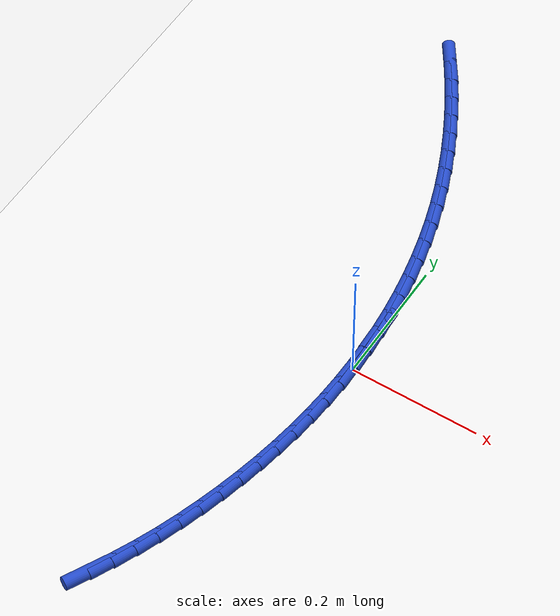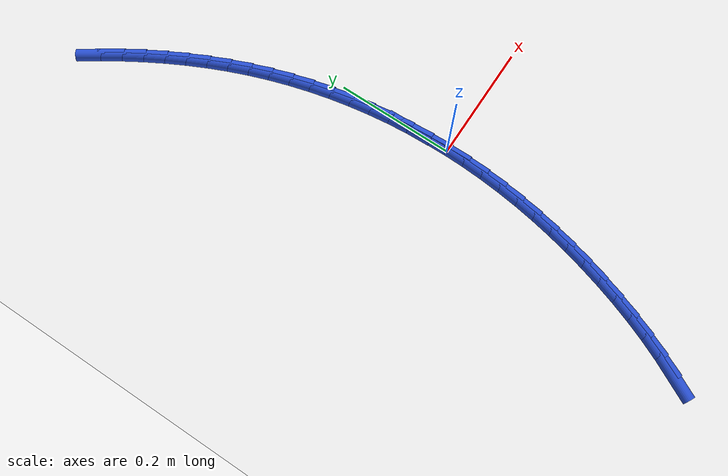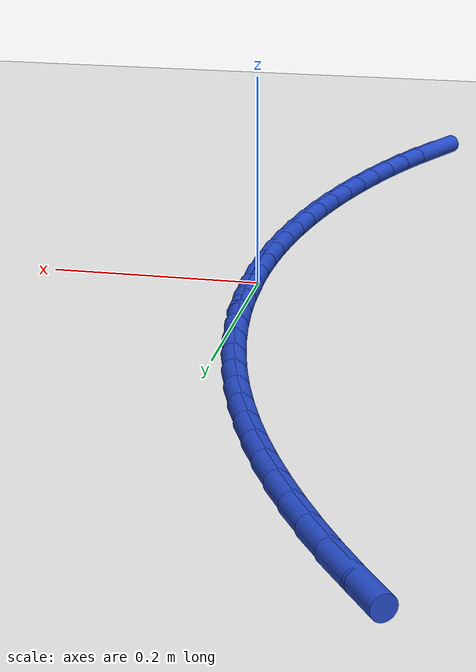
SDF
<sdf version="1.6">
 <world name="default">
  <model name="ground_plane">
   <static>1</static>
   <link name="link">
    <collision name="collision">
     <geometry><plane><normal>0 0 1</normal><size>100 100</size></plane></geometry>
     <surface><friction><ode><mu>100</mu><mu2>50</mu2></ode></friction></surface>
    </collision>
    <visual name="visual">
     <cast_shadows>0</cast_shadows>
     <geometry><plane><normal>0 0 1</normal><size>100 100</size></plane></geometry>
     <material>
      <script><uri>file://media/materials/scripts/gazebo.material</uri><name>Gazebo/WhiteGlow</name></script>
     </material>
    </visual>
   </link>
  </model>
  <model name="line">
   <link name="link_0">
    <pose>-5.204170427930421e-18 -6.245004513516506e-17 0.01 0 1.57 -1.5561447790093017</pose>
    <collision name="collision">
     <geometry><cylinder><radius>0.01</radius><length>0.08</length></cylinder></geometry>
    </collision>
    <visual name="visual">
     <material>
      <script><name>Gazebo/Blue</name><uri>file://media/materials/scripts/gazebo.material</uri></script>
     </material>
     <geometry><cylinder><radius>0.01</radius><length>0.08</length></cylinder></geometry>
    </visual>
   </link>
   <link name="link_1">
    <pose>-0.0005162711267056635 0.03523410573817638 0.01 0 1.57 -1.5201662241441394</pose>
    <collision name="collision">
     <geometry><cylinder><radius>0.01</radius><length>0.08</length></cylinder></geometry>
    </collision>
    <visual name="visual">
     <material>
      <script><name>Gazebo/Blue</name><uri>file://media/materials/scripts/gazebo.material</uri></script>
     </material>
     <geometry><cylinder><radius>0.01</radius><length>0.08</length></cylinder></geometry>
    </visual>
   </link>
   <link name="link_2">
    <pose>-0.0023020913173392257 0.07047586722419166 0.01 0 1.57 -1.484297227940387</pose>
    <collision name="collision">
     <geometry><cylinder><radius>0.01</radius><length>0.08</length></cylinder></geometry>
    </collision>
    <visual name="visual">
     <material>
      <script><name>Gazebo/Blue</name><uri>file://media/materials/scripts/gazebo.material</uri></script>
     </material>
     <geometry><cylinder><radius>0.01</radius><length>0.08</length></cylinder></geometry>
    </visual>
   </link>
   <link name="link_3">
    <pose>-0.005352982997565068 0.10565864834959819 0.01 0 1.57 -1.4484263781673588</pose>
    <collision name="collision">
     <geometry><cylinder><radius>0.01</radius><length>0.08</length></cylinder></geometry>
    </collision>
    <visual name="visual">
     <material>
      <script><name>Gazebo/Blue</name><uri>file://media/materials/scripts/gazebo.material</uri></script>
     </material>
     <geometry><cylinder><radius>0.01</radius><length>0.08</length></cylinder></geometry>
    </visual>
   </link>
   <link name="link_4">
    <pose>-0.009664468593047574 0.14071581300594832 0.01 0 1.57 -1.4124426665159606</pose>
    <collision name="collision">
     <geometry><cylinder><radius>0.01</radius><length>0.08</length></cylinder></geometry>
    </collision>
    <visual name="visual">
     <material>
      <script><name>Gazebo/Blue</name><uri>file://media/materials/scripts/gazebo.material</uri></script>
     </material>
     <geometry><cylinder><radius>0.01</radius><length>0.08</length></cylinder></geometry>
    </visual>
   </link>
   <link name="link_5">
    <pose>-0.015232070529451134 0.17558072508479447 0.01 0 1.57 -1.3762354643773935</pose>
    <collision name="collision">
     <geometry><cylinder><radius>0.01</radius><length>0.08</length></cylinder></geometry>
    </collision>
    <visual name="visual">
     <material>
      <script><name>Gazebo/Blue</name><uri>file://media/materials/scripts/gazebo.material</uri></script>
     </material>
     <geometry><cylinder><radius>0.01</radius><length>0.08</length></cylinder></geometry>
    </visual>
   </link>
   <link name="link_6">
    <pose>-0.022051311232440127 0.21018674847768903 0.01 0 1.57 -1.3396945418003954</pose>
    <collision name="collision">
     <geometry><cylinder><radius>0.01</radius><length>0.08</length></cylinder></geometry>
    </collision>
    <visual name="visual">
     <material>
      <script><name>Gazebo/Blue</name><uri>file://media/materials/scripts/gazebo.material</uri></script>
     </material>
     <geometry><cylinder><radius>0.01</radius><length>0.08</length></cylinder></geometry>
    </visual>
   </link>
   <link name="link_7">
    <pose>-0.030117713127678938 0.24446724707618445 0.01 0 1.57 -1.3027101657882285</pose>
    <collision name="collision">
     <geometry><cylinder><radius>0.01</radius><length>0.08</length></cylinder></geometry>
    </collision>
    <visual name="visual">
     <material>
      <script><name>Gazebo/Blue</name><uri>file://media/materials/scripts/gazebo.material</uri></script>
     </material>
     <geometry><cylinder><radius>0.01</radius><length>0.08</length></cylinder></geometry>
    </visual>
   </link>
   <link name="link_8">
    <pose>-0.03942679864083194 0.2783555847718331 0.01 0 1.57 -1.2652072793712814</pose>
    <collision name="collision">
     <geometry><cylinder><radius>0.01</radius><length>0.08</length></cylinder></geometry>
    </collision>
    <visual name="visual">
     <material>
      <script><name>Gazebo/Blue</name><uri>file://media/materials/scripts/gazebo.material</uri></script>
     </material>
     <geometry><cylinder><radius>0.01</radius><length>0.08</length></cylinder></geometry>
    </visual>
   </link>
   <link name="link_9">
    <pose>-0.04997340024318076 0.31178689562437656 0.01 0 1.57 -1.2278604827539903</pose>
    <collision name="collision">
     <geometry><cylinder><radius>0.01</radius><length>0.08</length></cylinder></geometry>
    </collision>
    <visual name="visual">
     <material>
      <script><name>Gazebo/Blue</name><uri>file://media/materials/scripts/gazebo.material</uri></script>
     </material>
     <geometry><cylinder><radius>0.01</radius><length>0.08</length></cylinder></geometry>
    </visual>
   </link>
   <link name="link_10">
    <pose>-0.061737290473816424 0.34473495191886827 0.01 0 1.57 -1.1914613746429972</pose>
    <collision name="collision">
     <geometry><cylinder><radius>0.01</radius><length>0.08</length></cylinder></geometry>
    </collision>
    <visual name="visual">
     <material>
      <script><name>Gazebo/Blue</name><uri>file://media/materials/scripts/gazebo.material</uri></script>
     </material>
     <geometry><cylinder><radius>0.01</radius><length>0.08</length></cylinder></geometry>
    </visual>
   </link>
   <link name="link_11">
    <pose>-0.07468361813707979 0.3772110450441017 0.01 0 1.57 -1.1561365020602024</pose>
    <collision name="collision">
     <geometry><cylinder><radius>0.01</radius><length>0.08</length></cylinder></geometry>
    </collision>
    <visual name="visual">
     <material>
      <script><name>Gazebo/Blue</name><uri>file://media/materials/scripts/gazebo.material</uri></script>
     </material>
     <geometry><cylinder><radius>0.01</radius><length>0.08</length></cylinder></geometry>
    </visual>
   </link>
   <link name="link_12">
    <pose>-0.088776929346043 0.40922801267212894 0.01 0 1.57 -1.1219664509776546</pose>
    <collision name="collision">
     <geometry><cylinder><radius>0.01</radius><length>0.08</length></cylinder></geometry>
    </collision>
    <visual name="visual">
     <material>
      <script><name>Gazebo/Blue</name><uri>file://media/materials/scripts/gazebo.material</uri></script>
     </material>
     <geometry><cylinder><radius>0.01</radius><length>0.08</length></cylinder></geometry>
    </visual>
   </link>
   <link name="link_13">
    <pose>-0.10398177021377833 0.4407986924750029 0.01 0 1.57 -1.0890156814608125</pose>
    <collision name="collision">
     <geometry><cylinder><radius>0.01</radius><length>0.08</length></cylinder></geometry>
    </collision>
    <visual name="visual">
     <material>
      <script><name>Gazebo/Blue</name><uri>file://media/materials/scripts/gazebo.material</uri></script>
     </material>
     <geometry><cylinder><radius>0.01</radius><length>0.08</length></cylinder></geometry>
    </visual>
   </link>
   <link name="link_14">
    <pose>-0.12026268685335802 0.47193592212477603 0.01 0 1.57 -1.0573331796554482</pose>
    <collision name="collision">
     <geometry><cylinder><radius>0.01</radius><length>0.08</length></cylinder></geometry>
    </collision>
    <visual name="visual">
     <material>
      <script><name>Gazebo/Blue</name><uri>file://media/materials/scripts/gazebo.material</uri></script>
     </material>
     <geometry><cylinder><radius>0.01</radius><length>0.08</length></cylinder></geometry>
    </visual>
   </link>
   <link name="link_15">
    <pose>-0.1375842253778542 0.5026525392935007 0.01 0 1.57 -1.0269534876532893</pose>
    <collision name="collision">
     <geometry><cylinder><radius>0.01</radius><length>0.08</length></cylinder></geometry>
    </collision>
    <visual name="visual">
     <material>
      <script><name>Gazebo/Blue</name><uri>file://media/materials/scripts/gazebo.material</uri></script>
     </material>
     <geometry><cylinder><radius>0.01</radius><length>0.08</length></cylinder></geometry>
    </visual>
   </link>
   <link name="link_16">
    <pose>-0.1559109319003392 0.5329613816532298 0.01 0 1.57 -0.9978980035696883</pose>
    <collision name="collision">
     <geometry><cylinder><radius>0.01</radius><length>0.08</length></cylinder></geometry>
    </collision>
    <visual name="visual">
     <material>
      <script><name>Gazebo/Blue</name><uri>file://media/materials/scripts/gazebo.material</uri></script>
     </material>
     <geometry><cylinder><radius>0.01</radius><length>0.08</length></cylinder></geometry>
    </visual>
   </link>
   <link name="link_17">
    <pose>-0.17520735253388506 0.5628752868760153 0.01 0 1.57 -0.9701764500124382</pose>
    <collision name="collision">
     <geometry><cylinder><radius>0.01</radius><length>0.08</length></cylinder></geometry>
    </collision>
    <visual name="visual">
     <material>
      <script><name>Gazebo/Blue</name><uri>file://media/materials/scripts/gazebo.material</uri></script>
     </material>
     <geometry><cylinder><radius>0.01</radius><length>0.08</length></cylinder></geometry>
    </visual>
   </link>
   <link name="link_196">
    <pose>-0.11755489331836111 -0.47583452861278686 0.01 0 1.57 1.0974962883103165</pose>
    <collision name="collision">
     <geometry><cylinder><radius>0.01</radius><length>0.08</length></cylinder></geometry>
    </collision>
    <visual name="visual">
     <material>
      <script><name>Gazebo/Blue</name><uri>file://media/materials/scripts/gazebo.material</uri></script>
     </material>
     <geometry><cylinder><radius>0.01</radius><length>0.08</length></cylinder></geometry>
    </visual>
   </link>
   <link name="link_197">
    <pose>-0.10146897178193827 -0.44442434655271323 0.01 0 1.57 1.1407491033429764</pose>
    <collision name="collision">
     <geometry><cylinder><radius>0.01</radius><length>0.08</length></cylinder></geometry>
    </collision>
    <visual name="visual">
     <material>
      <script><name>Gazebo/Blue</name><uri>file://media/materials/scripts/gazebo.material</uri></script>
     </material>
     <geometry><cylinder><radius>0.01</radius><length>0.08</length></cylinder></geometry>
    </visual>
   </link>
   <link name="link_198">
    <pose>-0.0866959490314756 -0.4122165299011821 0.01 0 1.57 1.1807261077444546</pose>
    <collision name="collision">
     <geometry><cylinder><radius>0.01</radius><length>0.08</length></cylinder></geometry>
    </collision>
    <visual name="visual">
     <material>
      <script><name>Gazebo/Blue</name><uri>file://media/materials/scripts/gazebo.material</uri></script>
     </material>
     <geometry><cylinder><radius>0.01</radius><length>0.08</length></cylinder></geometry>
    </visual>
   </link>
   <link name="link_199">
    <pose>-0.07318118144436547 -0.3793448410305729 0.01 0 1.57 1.2176680752501032</pose>
    <collision name="collision">
     <geometry><cylinder><radius>0.01</radius><length>0.08</length></cylinder></geometry>
    </collision>
    <visual name="visual">
     <material>
      <script><name>Gazebo/Blue</name><uri>file://media/materials/scripts/gazebo.material</uri></script>
     </material>
     <geometry><cylinder><radius>0.01</radius><length>0.08</length></cylinder></geometry>
    </visual>
   </link>
   <link name="link_200">
    <pose>-0.060870025398000197 -0.34594304231326506 0.01 0 1.57 1.2518139880083279</pose>
    <collision name="collision">
     <geometry><cylinder><radius>0.01</radius><length>0.08</length></cylinder></geometry>
    </collision>
    <visual name="visual">
     <material>
      <script><name>Gazebo/Blue</name><uri>file://media/materials/scripts/gazebo.material</uri></script>
     </material>
     <geometry><cylinder><radius>0.01</radius><length>0.08</length></cylinder></geometry>
    </visual>
   </link>
   <link name="link_201">
    <pose>-0.04970783726977214 -0.3121448961216381 0.01 0 1.57 1.283454417410372</pose>
    <collision name="collision">
     <geometry><cylinder><radius>0.01</radius><length>0.08</length></cylinder></geometry>
    </collision>
    <visual name="visual">
     <material>
      <script><name>Gazebo/Blue</name><uri>file://media/materials/scripts/gazebo.material</uri></script>
     </material>
     <geometry><cylinder><radius>0.01</radius><length>0.08</length></cylinder></geometry>
    </visual>
   </link>
   <link name="link_202">
    <pose>-0.039641512530660374 -0.2780818371048799 0.01 0 1.57 1.3142299116600538</pose>
    <collision name="collision">
     <geometry><cylinder><radius>0.01</radius><length>0.08</length></cylinder></geometry>
    </collision>
    <visual name="visual">
     <material>
      <script><name>Gazebo/Blue</name><uri>file://media/materials/scripts/gazebo.material</uri></script>
     </material>
     <geometry><cylinder><radius>0.01</radius><length>0.08</length></cylinder></geometry>
    </visual>
   </link>
   <link name="link_203">
    <pose>-0.030655291304774655 -0.2438288199061076 0.01 0 1.57 1.3456828014199609</pose>
    <collision name="collision">
     <geometry><cylinder><radius>0.01</radius><length>0.08</length></cylinder></geometry>
    </collision>
    <visual name="visual">
     <material>
      <script><name>Gazebo/Blue</name><uri>file://media/materials/scripts/gazebo.material</uri></script>
     </material>
     <geometry><cylinder><radius>0.01</radius><length>0.08</length></cylinder></geometry>
    </visual>
   </link>
   <link name="link_204">
    <pose>-0.022771872287404807 -0.20940263447411492 0.01 0 1.57 1.3778777923406833</pose>
    <collision name="collision">
     <geometry><cylinder><radius>0.01</radius><length>0.08</length></cylinder></geometry>
    </collision>
    <visual name="visual">
     <material>
      <script><name>Gazebo/Blue</name><uri>file://media/materials/scripts/gazebo.material</uri></script>
     </material>
     <geometry><cylinder><radius>0.01</radius><length>0.08</length></cylinder></geometry>
    </visual>
   </link>
   <link name="link_205">
    <pose>-0.01601571611137191 -0.17481740600560652 0.01 0 1.57 1.4108047338130483</pose>
    <collision name="collision">
     <geometry><cylinder><radius>0.01</radius><length>0.08</length></cylinder></geometry>
    </collision>
    <visual name="visual">
     <material>
      <script><name>Gazebo/Blue</name><uri>file://media/materials/scripts/gazebo.material</uri></script>
     </material>
     <geometry><cylinder><radius>0.01</radius><length>0.08</length></cylinder></geometry>
    </visual>
   </link>
   <link name="link_206">
    <pose>-0.010411283409497062 -0.14008725969728733 0.01 0 1.57 1.4444469177541042</pose>
    <collision name="collision">
     <geometry><cylinder><radius>0.01</radius><length>0.08</length></cylinder></geometry>
    </collision>
    <visual name="visual">
     <material>
      <script><name>Gazebo/Blue</name><uri>file://media/materials/scripts/gazebo.material</uri></script>
     </material>
     <geometry><cylinder><radius>0.01</radius><length>0.08</length></cylinder></geometry>
    </visual>
   </link>
   <link name="link_207">
    <pose>-0.005983034814601354 -0.1052263207458622 0.01 0 1.57 1.4787806120817681</pose>
    <collision name="collision">
     <geometry><cylinder><radius>0.01</radius><length>0.08</length></cylinder></geometry>
    </collision>
    <visual name="visual">
     <material>
      <script><name>Gazebo/Blue</name><uri>file://media/materials/scripts/gazebo.material</uri></script>
     </material>
     <geometry><cylinder><radius>0.01</radius><length>0.08</length></cylinder></geometry>
    </visual>
   </link>
   <link name="link_208">
    <pose>-0.0027554309595058837 -0.070248714348036 0.01 0 1.57 1.513774685324782</pose>
    <collision name="collision">
     <geometry><cylinder><radius>0.01</radius><length>0.08</length></cylinder></geometry>
    </collision>
    <visual name="visual">
     <material>
      <script><name>Gazebo/Blue</name><uri>file://media/materials/scripts/gazebo.material</uri></script>
     </material>
     <geometry><cylinder><radius>0.01</radius><length>0.08</length></cylinder></geometry>
    </visual>
   </link>
   <link name="link_209">
    <pose>-0.0007529324770317032 -0.03516856570051282 0.01 0 1.57 1.549390350842529</pose>
    <collision name="collision">
     <geometry><cylinder><radius>0.01</radius><length>0.08</length></cylinder></geometry>
    </collision>
    <visual name="visual">
     <material>
      <script><name>Gazebo/Blue</name><uri>file://media/materials/scripts/gazebo.material</uri></script>
     </material>
     <geometry><cylinder><radius>0.01</radius><length>0.08</length></cylinder></geometry>
    </visual>
   </link>
   <link name="link_210">
    <pose>-4.336808689942018e-18 2.7755575615628914e-17 0.01 0 1.57 -1.5560115951232933</pose>
    <collision name="collision">
     <geometry><cylinder><radius>0.01</radius><length>0.08</length></cylinder></geometry>
    </collision>
    <visual name="visual">
     <material>
      <script><name>Gazebo/Blue</name><uri>file://media/materials/scripts/gazebo.material</uri></script>
     </material>
     <geometry><cylinder><radius>0.01</radius><length>0.08</length></cylinder></geometry>
    </visual>
   </link>
   <link name="link_211">
    <pose>-0.0005210941612317829 0.03524285755680015 0.01 0 1.57 -1.5193000948992283</pose>
    <collision name="collision">
     <geometry><cylinder><radius>0.01</radius><length>0.08</length></cylinder></geometry>
    </collision>
    <visual name="visual">
     <material>
      <script><name>Gazebo/Blue</name><uri>file://media/materials/scripts/gazebo.material</uri></script>
     </material>
     <geometry><cylinder><radius>0.01</radius><length>0.08</length></cylinder></geometry>
    </visual>
   </link>
   <link name="link_212">
    <pose>-0.0023406755935482717 0.07054588177318347 0.01 0 1.57 -1.5376290154079615</pose>
    <collision name="collision">
     <geometry><cylinder><radius>0.01</radius><length>0.08</length></cylinder></geometry>
    </collision>
    <visual name="visual">
     <material>
      <script><name>Gazebo/Blue</name><uri>file://media/materials/scripts/gazebo.material</uri></script>
     </material>
     <geometry><cylinder><radius>0.01</radius><length>0.08</length></cylinder></geometry>
    </visual>
   </link>
  </model>
 </world>
</sdf>
